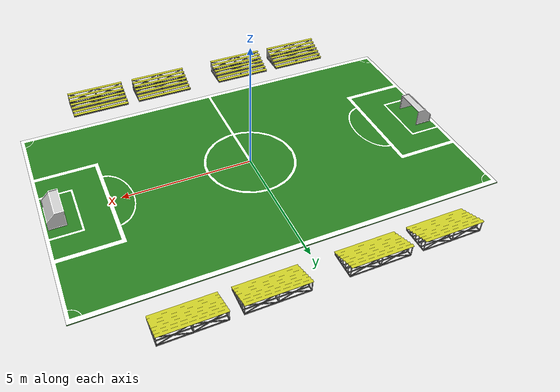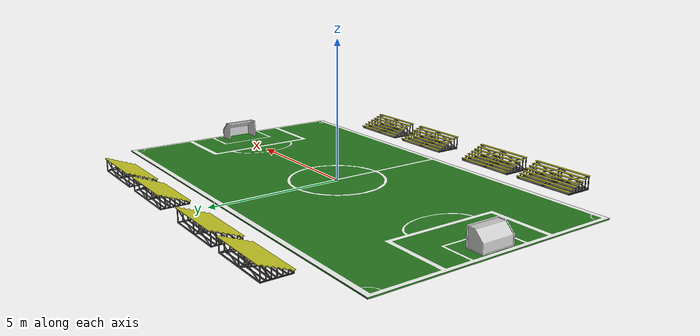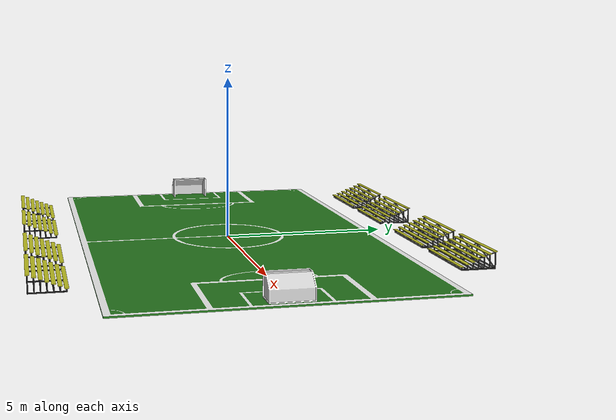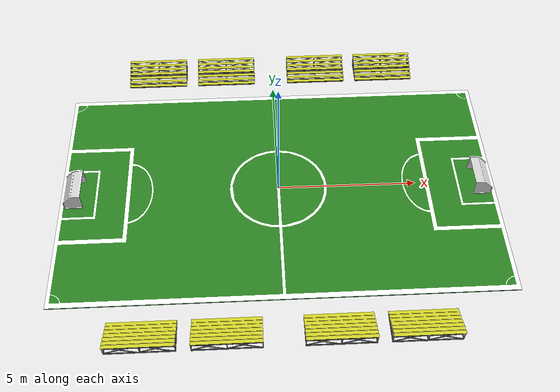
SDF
<?xml version='1.0'?>

<sdf version='1.6'>
  <model name="soccer_field">
    <static>true</static>
    <link name="soccer_field_link">
      <pose>0 0 0 0 0 1.57</pose>
      <collision name="soccer_field_collision">
        <geometry>
          <mesh>
            <scale>0.3259 0.3259 0.3259</scale>
            <uri>file://soccer_field/meshes/collision/Soccer_Field.stl</uri>
          </mesh>
        </geometry>
        <surface>
          <bounce>
            <restitution_coefficient>0.1</restitution_coefficient>
            <threshold>0.005</threshold>
          </bounce>
        </surface>
      </collision>
      <visual name="soccer_field_visual">
        <geometry>
          <mesh>
            <scale>0.3259 0.3259 0.3259</scale>
            <uri>file://soccer_field/meshes/visual/Soccer_Field.dae</uri>
          </mesh>
        </geometry>
      </visual>
    </link>
  </model>
</sdf>
